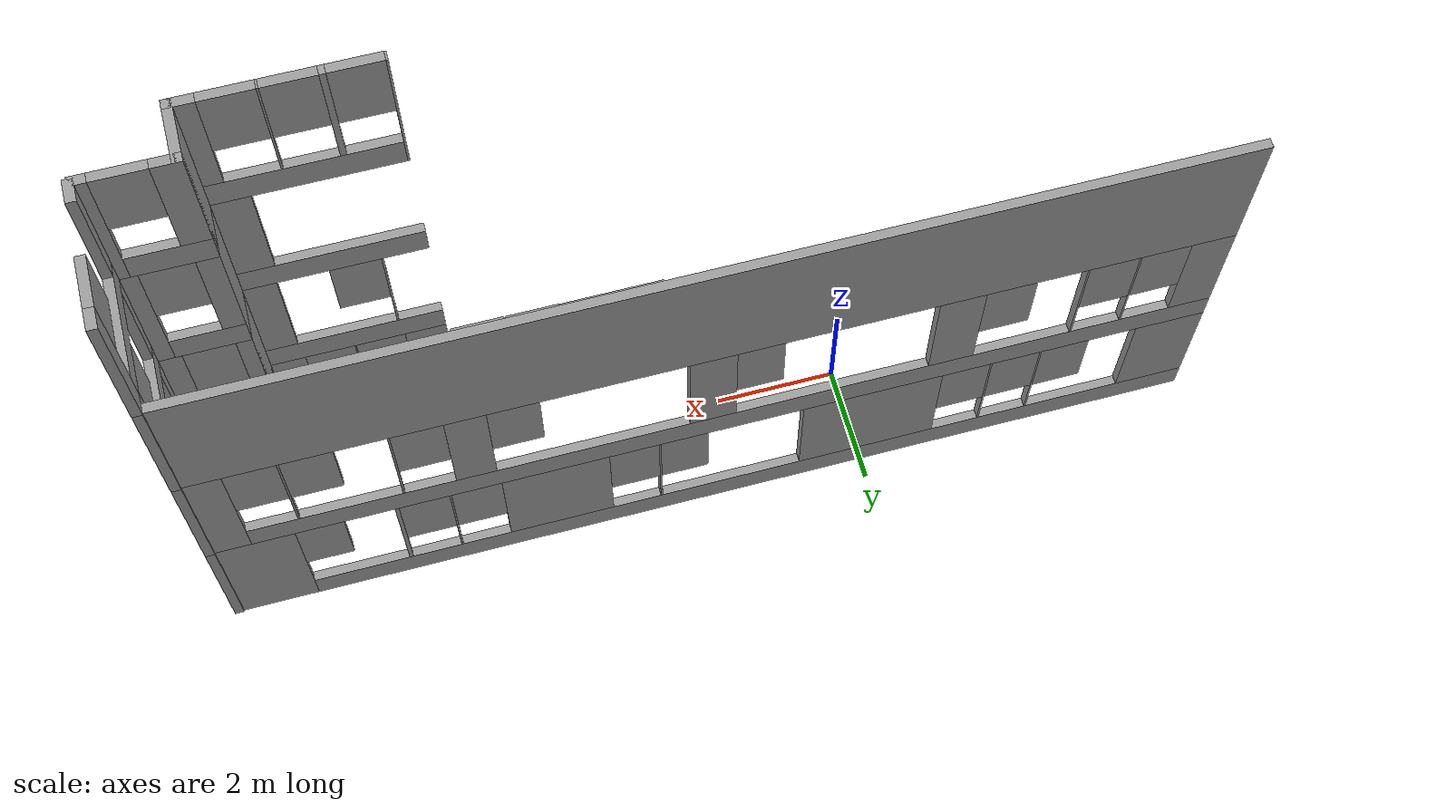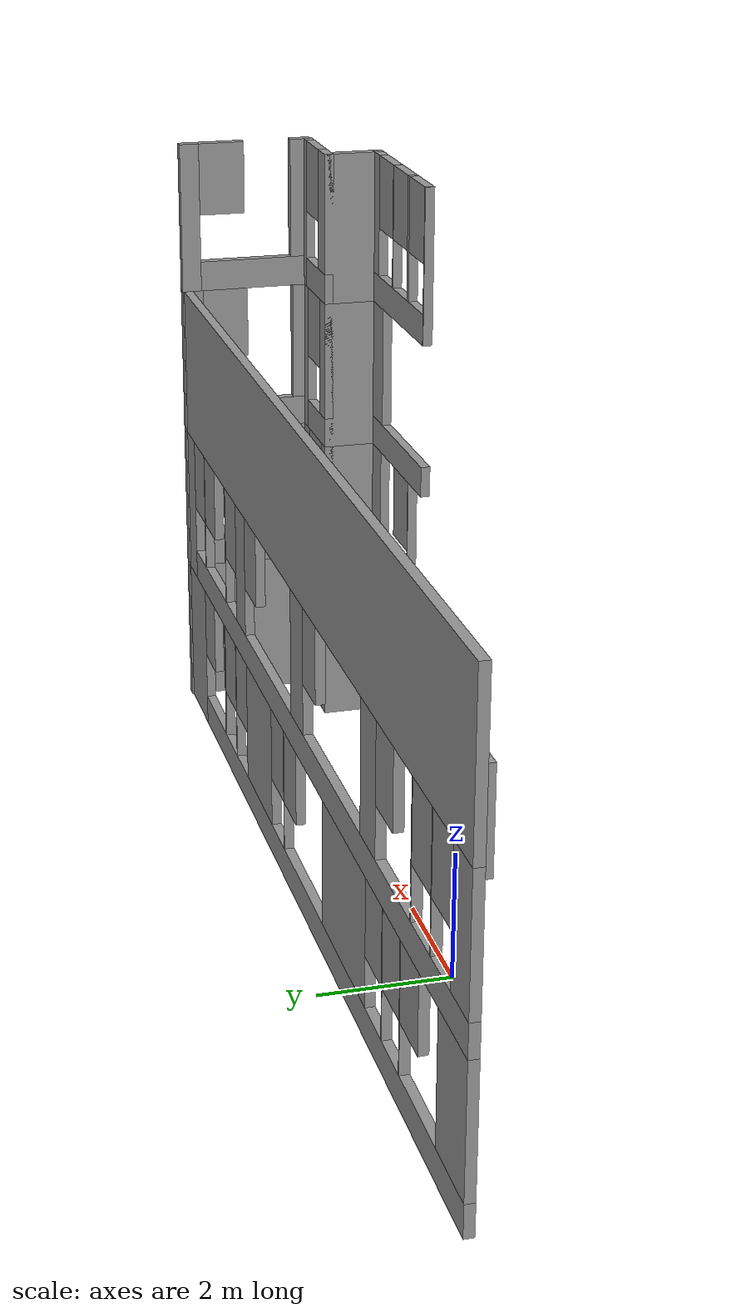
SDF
<sdf version="1.7">
 <model name="multimedia">
  <pose>2.48328 0.104264 0 0 -0 0</pose>
  <link name="Door_10">
   <collision name="Door_10_Collision">
    <geometry><box><size>0.9 0.17 2</size></box></geometry>
    <pose>0 0 1 0 -0 0</pose>
   </collision>
   <visual name="Door_10_Visual">
    <pose>0 0 1 0 -0 0</pose>
    <geometry><box><size>0.9 0.17 2</size></box></geometry>
    <material>
     <script><uri>file://media/materials/scripts/gazebo.material</uri><name>Gazebo/Grey</name></script>
    </material>
   </visual>
   <pose>3.23662 -1.49446 0 0 -0 0</pose>
  </link>
  <link name="Door_3">
   <collision name="Door_3_Collision">
    <geometry><box><size>0.9 0.17 2</size></box></geometry>
    <pose>0 0 1 0 -0 0</pose>
   </collision>
   <visual name="Door_3_Visual">
    <pose>0 0 1 0 -0 0</pose>
    <geometry><box><size>0.9 0.17 2</size></box></geometry>
    <material>
     <script><uri>file://media/materials/scripts/gazebo.material</uri><name>Gazebo/Grey</name></script>
    </material>
   </visual>
   <pose>0.536341 -1.48027 0 0 -0 0</pose>
  </link>
  <link name="Door_5">
   <collision name="Door_5_Collision">
    <geometry><box><size>0.9 0.17 2</size></box></geometry>
    <pose>0 0 1 0 -0 0</pose>
   </collision>
   <visual name="Door_5_Visual">
    <pose>0 0 1 0 -0 0</pose>
    <geometry><box><size>0.9 0.17 2</size></box></geometry>
    <material>
     <script><uri>file://media/materials/scripts/gazebo.material</uri><name>Gazebo/Grey</name></script>
    </material>
   </visual>
   <pose>1.44069 -1.48027 0 0 -0 0</pose>
  </link>
  <link name="Door_7">
   <collision name="Door_7_Collision">
    <geometry><box><size>0.9 0.17 2</size></box></geometry>
    <pose>0 0 1 0 -0 0</pose>
   </collision>
   <visual name="Door_7_Visual">
    <pose>0 0 1 0 -0 0</pose>
    <geometry><box><size>0.9 0.17 2</size></box></geometry>
    <material>
     <script><uri>file://media/materials/scripts/gazebo.material</uri><name>Gazebo/Grey</name></script>
    </material>
   </visual>
   <pose>2.3143 -1.4882 0 0 -0 0</pose>
  </link>
  <link name="Door_9">
   <collision name="Door_9_Collision">
    <geometry><box><size>0.9 0.17 2</size></box></geometry>
    <pose>0 0 1 0 -0 0</pose>
   </collision>
   <visual name="Door_9_Visual">
    <pose>0 0 1 0 -0 0</pose>
    <geometry><box><size>0.9 0.17 2</size></box></geometry>
    <material>
     <script><uri>file://media/materials/scripts/gazebo.material</uri><name>Gazebo/Grey</name></script>
    </material>
   </visual>
   <pose>7.58444 -0.673203 0 0 -0 0</pose>
  </link>
  <link name="Wall_102">
   <pose>5.2393 -1.4882 7.5 0 -0 0</pose>
   <visual name="Wall_102_Visual_0">
    <pose>-1.48398 0 1.25 0 -0 0</pose>
    <geometry><box><size>0.032041 0.15 2.5</size></box></geometry>
    <material>
     <script><uri>file://media/materials/scripts/gazebo.material</uri><name>Gazebo/Grey</name></script>
     <ambient>1 1 1 1</ambient>
    </material>
    <meta><layer>3</layer></meta>
   </visual>
   <collision name="Wall_102_Collision_0">
    <geometry><box><size>0.032041 0.15 2.5</size></box></geometry>
    <pose>-1.48398 0 1.25 0 -0 0</pose>
   </collision>
   <visual name="Wall_102_Visual_1">
    <pose>0.016021 0 0.25 0 -0 0</pose>
    <geometry><box><size>2.96796 0.15 0.5</size></box></geometry>
    <material>
     <script><uri>file://media/materials/scripts/gazebo.material</uri><name>Gazebo/Grey</name></script>
     <ambient>1 1 1 1</ambient>
    </material>
    <meta><layer>3</layer></meta>
   </visual>
   <collision name="Wall_102_Collision_1">
    <geometry><box><size>2.96796 0.15 0.5</size></box></geometry>
    <pose>0.016021 0 0.25 0 -0 0</pose>
   </collision>
   <visual name="Wall_102_Visual_2">
    <pose>-0.620737 0 1.5 0 -0 0</pose>
    <geometry><box><size>0.094444 0.15 2</size></box></geometry>
    <material>
     <script><uri>file://media/materials/scripts/gazebo.material</uri><name>Gazebo/Grey</name></script>
     <ambient>1 1 1 1</ambient>
    </material>
    <meta><layer>3</layer></meta>
   </visual>
   <collision name="Wall_102_Collision_2">
    <geometry><box><size>0.094444 0.15 2</size></box></geometry>
    <pose>-0.620737 0 1.5 0 -0 0</pose>
   </collision>
   <visual name="Wall_102_Visual_3">
    <pose>0.241763 0 1.5 0 -0 0</pose>
    <geometry><box><size>0.030555 0.15 2</size></box></geometry>
    <material>
     <script><uri>file://media/materials/scripts/gazebo.material</uri><name>Gazebo/Grey</name></script>
     <ambient>1 1 1 1</ambient>
    </material>
    <meta><layer>3</layer></meta>
   </visual>
   <collision name="Wall_102_Collision_3">
    <geometry><box><size>0.030555 0.15 2</size></box></geometry>
    <pose>0.241763 0 1.5 0 -0 0</pose>
   </collision>
   <visual name="Wall_102_Visual_4">
    <pose>1.27852 0 1.5 0 -0 0</pose>
    <geometry><box><size>0.442959 0.15 2</size></box></geometry>
    <material>
     <script><uri>file://media/materials/scripts/gazebo.material</uri><name>Gazebo/Grey</name></script>
     <ambient>1 1 1 1</ambient>
    </material>
    <meta><layer>3</layer></meta>
   </visual>
   <collision name="Wall_102_Collision_4">
    <geometry><box><size>0.442959 0.15 2</size></box></geometry>
    <pose>1.27852 0 1.5 0 -0 0</pose>
   </collision>
   <visual name="Wall_102_Visual_5">
    <pose>-1.06796 0 1.9 0 -0 0</pose>
    <geometry><box><size>0.8 0.15 1.2</size></box></geometry>
    <material>
     <script><uri>file://media/materials/scripts/gazebo.material</uri><name>Gazebo/Grey</name></script>
     <ambient>1 1 1 1</ambient>
    </material>
    <meta><layer>3</layer></meta>
   </visual>
   <collision name="Wall_102_Collision_5">
    <geometry><box><size>0.8 0.15 1.2</size></box></geometry>
    <pose>-1.06796 0 1.9 0 -0 0</pose>
   </collision>
   <visual name="Wall_102_Visual_6">
    <pose>-0.173514 0 1.9 0 -0 0</pose>
    <geometry><box><size>0.8 0.15 1.2</size></box></geometry>
    <material>
     <script><uri>file://media/materials/scripts/gazebo.material</uri><name>Gazebo/Grey</name></script>
     <ambient>1 1 1 1</ambient>
    </material>
    <meta><layer>3</layer></meta>
   </visual>
   <collision name="Wall_102_Collision_6">
    <geometry><box><size>0.8 0.15 1.2</size></box></geometry>
    <pose>-0.173514 0 1.9 0 -0 0</pose>
   </collision>
   <visual name="Wall_102_Visual_7">
    <pose>0.657041 0 1.9 0 -0 0</pose>
    <geometry><box><size>0.8 0.15 1.2</size></box></geometry>
    <material>
     <script><uri>file://media/materials/scripts/gazebo.material</uri><name>Gazebo/Grey</name></script>
     <ambient>1 1 1 1</ambient>
    </material>
    <meta><layer>3</layer></meta>
   </visual>
   <collision name="Wall_102_Collision_7">
    <geometry><box><size>0.8 0.15 1.2</size></box></geometry>
    <pose>0.657041 0 1.9 0 -0 0</pose>
   </collision>
  </link>
  <link name="Wall_105">
   <pose>8.06295 0.4382 7.5 0 -0 -1.5708</pose>
   <visual name="Wall_105_Visual_0">
    <pose>-0.963732 0 1.25 0 -0 0</pose>
    <geometry><box><size>0.322536 0.15 2.5</size></box></geometry>
    <material>
     <script><uri>file://media/materials/scripts/gazebo.material</uri><name>Gazebo/Grey</name></script>
     <ambient>1 1 1 1</ambient>
    </material>
    <meta><layer>3</layer></meta>
   </visual>
   <collision name="Wall_105_Collision_0">
    <geometry><box><size>0.322536 0.15 2.5</size></box></geometry>
    <pose>-0.963732 0 1.25 0 -0 0</pose>
   </collision>
   <visual name="Wall_105_Visual_1">
    <pose>0.161268 0 0.25 0 -0 0</pose>
    <geometry><box><size>1.92746 0.15 0.5</size></box></geometry>
    <material>
     <script><uri>file://media/materials/scripts/gazebo.material</uri><name>Gazebo/Grey</name></script>
     <ambient>1 1 1 1</ambient>
    </material>
    <meta><layer>3</layer></meta>
   </visual>
   <collision name="Wall_105_Collision_1">
    <geometry><box><size>1.92746 0.15 0.5</size></box></geometry>
    <pose>0.161268 0 0.25 0 -0 0</pose>
   </collision>
   <visual name="Wall_105_Visual_2">
    <pose>0.944601 0 1.5 0 -0 0</pose>
    <geometry><box><size>0.360798 0.15 2</size></box></geometry>
    <material>
     <script><uri>file://media/materials/scripts/gazebo.material</uri><name>Gazebo/Grey</name></script>
     <ambient>1 1 1 1</ambient>
    </material>
    <meta><layer>3</layer></meta>
   </visual>
   <collision name="Wall_105_Collision_2">
    <geometry><box><size>0.360798 0.15 2</size></box></geometry>
    <pose>0.944601 0 1.5 0 -0 0</pose>
   </collision>
   <visual name="Wall_105_Visual_3">
    <pose>-0.419131 0 1.9 0 -0 0</pose>
    <geometry><box><size>0.766667 0.15 1.2</size></box></geometry>
    <material>
     <script><uri>file://media/materials/scripts/gazebo.material</uri><name>Gazebo/Grey</name></script>
     <ambient>1 1 1 1</ambient>
    </material>
    <meta><layer>3</layer></meta>
   </visual>
   <collision name="Wall_105_Collision_3">
    <geometry><box><size>0.766667 0.15 1.2</size></box></geometry>
    <pose>-0.419131 0 1.9 0 -0 0</pose>
   </collision>
  </link>
  <link name="Wall_106">
   <collision name="Wall_106_Collision">
    <geometry><box><size>1 0.15 2.5</size></box></geometry>
    <pose>0 0 1.25 0 -0 0</pose>
   </collision>
   <visual name="Wall_106_Visual">
    <pose>0 0 1.25 0 -0 0</pose>
    <geometry><box><size>1 0.15 2.5</size></box></geometry>
    <material>
     <script><uri>file://media/materials/scripts/gazebo.material</uri><name>Gazebo/Grey</name></script>
     <ambient>1 1 1 1</ambient>
    </material>
    <meta><layer>3</layer></meta>
   </visual>
   <pose>6.6643 -1.0632 7.5 0 -0 1.5708</pose>
  </link>
  <link name="Wall_107">
   <pose>7.3393 -0.6382 7.5 0 -0 3.14159</pose>
   <visual name="Wall_107_Visual_0">
    <pose>-0.620187 0 1.25 0 -0 0</pose>
    <geometry><box><size>0.259625 0.15 2.5</size></box></geometry>
    <material>
     <script><uri>file://media/materials/scripts/gazebo.material</uri><name>Gazebo/Grey</name></script>
     <ambient>1 1 1 1</ambient>
    </material>
    <meta><layer>3</layer></meta>
   </visual>
   <collision name="Wall_107_Collision_0">
    <geometry><box><size>0.259625 0.15 2.5</size></box></geometry>
    <pose>-0.620187 0 1.25 0 -0 0</pose>
   </collision>
   <visual name="Wall_107_Visual_1">
    <pose>0.129813 0 0.25 0 -0 0</pose>
    <geometry><box><size>1.24038 0.15 0.5</size></box></geometry>
    <material>
     <script><uri>file://media/materials/scripts/gazebo.material</uri><name>Gazebo/Grey</name></script>
     <ambient>1 1 1 1</ambient>
    </material>
    <meta><layer>3</layer></meta>
   </visual>
   <collision name="Wall_107_Collision_1">
    <geometry><box><size>1.24038 0.15 0.5</size></box></geometry>
    <pose>0.129813 0 0.25 0 -0 0</pose>
   </collision>
   <visual name="Wall_107_Visual_2">
    <pose>0.529813 0 1.5 0 -0 0</pose>
    <geometry><box><size>0.440375 0.15 2</size></box></geometry>
    <material>
     <script><uri>file://media/materials/scripts/gazebo.material</uri><name>Gazebo/Grey</name></script>
     <ambient>1 1 1 1</ambient>
    </material>
    <meta><layer>3</layer></meta>
   </visual>
   <collision name="Wall_107_Collision_2">
    <geometry><box><size>0.440375 0.15 2</size></box></geometry>
    <pose>0.529813 0 1.5 0 -0 0</pose>
   </collision>
   <visual name="Wall_107_Visual_3">
    <pose>-0.090375 0 1.9 0 -0 0</pose>
    <geometry><box><size>0.8 0.15 1.2</size></box></geometry>
    <material>
     <script><uri>file://media/materials/scripts/gazebo.material</uri><name>Gazebo/Grey</name></script>
     <ambient>1 1 1 1</ambient>
    </material>
    <meta><layer>3</layer></meta>
   </visual>
   <collision name="Wall_107_Collision_3">
    <geometry><box><size>0.8 0.15 1.2</size></box></geometry>
    <pose>-0.090375 0 1.9 0 -0 0</pose>
   </collision>
  </link>
  <link name="Wall_13">
   <pose>5.2393 -1.4882 0 0 -0 0</pose>
   <visual name="Wall_13_Visual_0">
    <pose>-1.16632 0 1.25 0 -0 0</pose>
    <geometry><box><size>0.667366 0.15 2.5</size></box></geometry>
    <material>
     <script><uri>file://media/materials/scripts/gazebo.material</uri><name>Gazebo/Grey</name></script>
     <ambient>1 1 1 1</ambient>
    </material>
    <meta><layer>0</layer></meta>
   </visual>
   <collision name="Wall_13_Collision_0">
    <geometry><box><size>0.667366 0.15 2.5</size></box></geometry>
    <pose>-1.16632 0 1.25 0 -0 0</pose>
   </collision>
   <visual name="Wall_13_Visual_1">
    <pose>0.333683 0 0.25 0 -0 0</pose>
    <geometry><box><size>2.33263 0.15 0.5</size></box></geometry>
    <material>
     <script><uri>file://media/materials/scripts/gazebo.material</uri><name>Gazebo/Grey</name></script>
     <ambient>1 1 1 1</ambient>
    </material>
    <meta><layer>0</layer></meta>
   </visual>
   <collision name="Wall_13_Collision_1">
    <geometry><box><size>2.33263 0.15 0.5</size></box></geometry>
    <pose>0.333683 0 0.25 0 -0 0</pose>
   </collision>
   <visual name="Wall_13_Visual_2">
    <pose>-0.022006 0 1.5 0 -0 0</pose>
    <geometry><box><size>0.021256 0.15 2</size></box></geometry>
    <material>
     <script><uri>file://media/materials/scripts/gazebo.material</uri><name>Gazebo/Grey</name></script>
     <ambient>1 1 1 1</ambient>
    </material>
    <meta><layer>0</layer></meta>
   </visual>
   <collision name="Wall_13_Collision_2">
    <geometry><box><size>0.021256 0.15 2</size></box></geometry>
    <pose>-0.022006 0 1.5 0 -0 0</pose>
   </collision>
   <visual name="Wall_13_Visual_3">
    <pose>1.14431 0 1.5 0 -0 0</pose>
    <geometry><box><size>0.711378 0.15 2</size></box></geometry>
    <material>
     <script><uri>file://media/materials/scripts/gazebo.material</uri><name>Gazebo/Grey</name></script>
     <ambient>1 1 1 1</ambient>
    </material>
    <meta><layer>0</layer></meta>
   </visual>
   <collision name="Wall_13_Collision_3">
    <geometry><box><size>0.711378 0.15 2</size></box></geometry>
    <pose>1.14431 0 1.5 0 -0 0</pose>
   </collision>
   <visual name="Wall_13_Visual_4">
    <pose>-0.432634 0 1.9 0 -0 0</pose>
    <geometry><box><size>0.8 0.15 1.2</size></box></geometry>
    <material>
     <script><uri>file://media/materials/scripts/gazebo.material</uri><name>Gazebo/Grey</name></script>
     <ambient>1 1 1 1</ambient>
    </material>
    <meta><layer>0</layer></meta>
   </visual>
   <collision name="Wall_13_Collision_4">
    <geometry><box><size>0.8 0.15 1.2</size></box></geometry>
    <pose>-0.432634 0 1.9 0 -0 0</pose>
   </collision>
   <visual name="Wall_13_Visual_5">
    <pose>0.388622 0 1.9 0 -0 0</pose>
    <geometry><box><size>0.8 0.15 1.2</size></box></geometry>
    <material>
     <script><uri>file://media/materials/scripts/gazebo.material</uri><name>Gazebo/Grey</name></script>
     <ambient>1 1 1 1</ambient>
    </material>
    <meta><layer>0</layer></meta>
   </visual>
   <collision name="Wall_13_Collision_5">
    <geometry><box><size>0.8 0.15 1.2</size></box></geometry>
    <pose>0.388622 0 1.9 0 -0 0</pose>
   </collision>
  </link>
  <link name="Wall_2">
   <pose>0.012948 1.46405 0 0 -0 3.14159</pose>
   <visual name="Wall_2_Visual_0">
    <pose>-7.42781 0 1.25 0 -0 0</pose>
    <geometry><box><size>1.39439 0.15 2.5</size></box></geometry>
    <material>
     <script><uri>file://media/materials/scripts/gazebo.material</uri><name>Gazebo/Grey</name></script>
     <ambient>1 1 1 1</ambient>
    </material>
    <meta><layer>0</layer></meta>
   </visual>
   <collision name="Wall_2_Collision_0">
    <geometry><box><size>1.39439 0.15 2.5</size></box></geometry>
    <pose>-7.42781 0 1.25 0 -0 0</pose>
   </collision>
   <visual name="Wall_2_Visual_1">
    <pose>0.697193 0 0.25 0 -0 0</pose>
    <geometry><box><size>14.8556 0.15 0.5</size></box></geometry>
    <material>
     <script><uri>file://media/materials/scripts/gazebo.material</uri><name>Gazebo/Grey</name></script>
     <ambient>1 1 1 1</ambient>
    </material>
    <meta><layer>0</layer></meta>
   </visual>
   <collision name="Wall_2_Collision_1">
    <geometry><box><size>14.8556 0.15 0.5</size></box></geometry>
    <pose>0.697193 0 0.25 0 -0 0</pose>
   </collision>
   <visual name="Wall_2_Visual_2">
    <pose>-5.1327 0 1.5 0 -0 0</pose>
    <geometry><box><size>0.0625 0.15 2</size></box></geometry>
    <material>
     <script><uri>file://media/materials/scripts/gazebo.material</uri><name>Gazebo/Grey</name></script>
     <ambient>1 1 1 1</ambient>
    </material>
    <meta><layer>0</layer></meta>
   </visual>
   <collision name="Wall_2_Collision_2">
    <geometry><box><size>0.0625 0.15 2</size></box></geometry>
    <pose>-5.1327 0 1.5 0 -0 0</pose>
   </collision>
   <visual name="Wall_2_Visual_3">
    <pose>-4.28617 0 1.5 0 -0 0</pose>
    <geometry><box><size>0.030556 0.15 2</size></box></geometry>
    <material>
     <script><uri>file://media/materials/scripts/gazebo.material</uri><name>Gazebo/Grey</name></script>
     <ambient>1 1 1 1</ambient>
    </material>
    <meta><layer>0</layer></meta>
   </visual>
   <collision name="Wall_2_Collision_3">
    <geometry><box><size>0.030556 0.15 2</size></box></geometry>
    <pose>-4.28617 0 1.5 0 -0 0</pose>
   </collision>
   <visual name="Wall_2_Visual_4">
    <pose>-2.60909 0 1.5 0 -0 0</pose>
    <geometry><box><size>1.72361 0.15 2</size></box></geometry>
    <material>
     <script><uri>file://media/materials/scripts/gazebo.material</uri><name>Gazebo/Grey</name></script>
     <ambient>1 1 1 1</ambient>
    </material>
    <meta><layer>0</layer></meta>
   </visual>
   <collision name="Wall_2_Collision_4">
    <geometry><box><size>1.72361 0.15 2</size></box></geometry>
    <pose>-2.60909 0 1.5 0 -0 0</pose>
   </collision>
   <visual name="Wall_2_Visual_5">
    <pose>-0.932003 0 1.5 0 -0 0</pose>
    <geometry><box><size>0.030555 0.15 2</size></box></geometry>
    <material>
     <script><uri>file://media/materials/scripts/gazebo.material</uri><name>Gazebo/Grey</name></script>
     <ambient>1 1 1 1</ambient>
    </material>
    <meta><layer>0</layer></meta>
   </visual>
   <collision name="Wall_2_Collision_5">
    <geometry><box><size>0.030555 0.15 2</size></box></geometry>
    <pose>-0.932003 0 1.5 0 -0 0</pose>
   </collision>
   <visual name="Wall_2_Visual_6">
    <pose>2.56591 0 1.5 0 -0 0</pose>
    <geometry><box><size>2.29861 0.15 2</size></box></geometry>
    <material>
     <script><uri>file://media/materials/scripts/gazebo.material</uri><name>Gazebo/Grey</name></script>
     <ambient>1 1 1 1</ambient>
    </material>
    <meta><layer>0</layer></meta>
   </visual>
   <collision name="Wall_2_Collision_6">
    <geometry><box><size>2.29861 0.15 2</size></box></geometry>
    <pose>2.56591 0 1.5 0 -0 0</pose>
   </collision>
   <visual name="Wall_2_Visual_7">
    <pose>4.5305 0 1.5 0 -0 0</pose>
    <geometry><box><size>0.030556 0.15 2</size></box></geometry>
    <material>
     <script><uri>file://media/materials/scripts/gazebo.material</uri><name>Gazebo/Grey</name></script>
     <ambient>1 1 1 1</ambient>
    </material>
    <meta><layer>0</layer></meta>
   </visual>
   <collision name="Wall_2_Collision_7">
    <geometry><box><size>0.030556 0.15 2</size></box></geometry>
    <pose>4.5305 0 1.5 0 -0 0</pose>
   </collision>
   <visual name="Wall_2_Visual_8">
    <pose>5.36105 0 1.5 0 -0 0</pose>
    <geometry><box><size>0.030555 0.15 2</size></box></geometry>
    <material>
     <script><uri>file://media/materials/scripts/gazebo.material</uri><name>Gazebo/Grey</name></script>
     <ambient>1 1 1 1</ambient>
    </material>
    <meta><layer>0</layer></meta>
   </visual>
   <collision name="Wall_2_Collision_8">
    <geometry><box><size>0.030555 0.15 2</size></box></geometry>
    <pose>5.36105 0 1.5 0 -0 0</pose>
   </collision>
   <visual name="Wall_2_Visual_9">
    <pose>7.54997 0 1.5 0 -0 0</pose>
    <geometry><box><size>1.15006 0.15 2</size></box></geometry>
    <material>
     <script><uri>file://media/materials/scripts/gazebo.material</uri><name>Gazebo/Grey</name></script>
     <ambient>1 1 1 1</ambient>
    </material>
    <meta><layer>0</layer></meta>
   </visual>
   <collision name="Wall_2_Collision_9">
    <geometry><box><size>1.15006 0.15 2</size></box></geometry>
    <pose>7.54997 0 1.5 0 -0 0</pose>
   </collision>
   <visual name="Wall_2_Visual_10">
    <pose>-6.34728 0 1.9 0 -0 0</pose>
    <geometry><box><size>0.766666 0.15 1.2</size></box></geometry>
    <material>
     <script><uri>file://media/materials/scripts/gazebo.material</uri><name>Gazebo/Grey</name></script>
     <ambient>1 1 1 1</ambient>
    </material>
    <meta><layer>0</layer></meta>
   </visual>
   <collision name="Wall_2_Collision_10">
    <geometry><box><size>0.766666 0.15 1.2</size></box></geometry>
    <pose>-6.34728 0 1.9 0 -0 0</pose>
   </collision>
   <visual name="Wall_2_Visual_11">
    <pose>-4.70145 0 1.9 0 -0 0</pose>
    <geometry><box><size>0.8 0.15 1.2</size></box></geometry>
    <material>
     <script><uri>file://media/materials/scripts/gazebo.material</uri><name>Gazebo/Grey</name></script>
     <ambient>1 1 1 1</ambient>
    </material>
    <meta><layer>0</layer></meta>
   </visual>
   <collision name="Wall_2_Collision_11">
    <geometry><box><size>0.8 0.15 1.2</size></box></geometry>
    <pose>-4.70145 0 1.9 0 -0 0</pose>
   </collision>
   <visual name="Wall_2_Visual_12">
    <pose>-3.87089 0 1.9 0 -0 0</pose>
    <geometry><box><size>0.8 0.15 1.2</size></box></geometry>
    <material>
     <script><uri>file://media/materials/scripts/gazebo.material</uri><name>Gazebo/Grey</name></script>
     <ambient>1 1 1 1</ambient>
    </material>
    <meta><layer>0</layer></meta>
   </visual>
   <collision name="Wall_2_Collision_12">
    <geometry><box><size>0.8 0.15 1.2</size></box></geometry>
    <pose>-3.87089 0 1.9 0 -0 0</pose>
   </collision>
   <visual name="Wall_2_Visual_13">
    <pose>-1.34728 0 1.9 0 -0 0</pose>
    <geometry><box><size>0.8 0.15 1.2</size></box></geometry>
    <material>
     <script><uri>file://media/materials/scripts/gazebo.material</uri><name>Gazebo/Grey</name></script>
     <ambient>1 1 1 1</ambient>
    </material>
    <meta><layer>0</layer></meta>
   </visual>
   <collision name="Wall_2_Collision_13">
    <geometry><box><size>0.8 0.15 1.2</size></box></geometry>
    <pose>-1.34728 0 1.9 0 -0 0</pose>
   </collision>
   <visual name="Wall_2_Visual_14">
    <pose>-0.533392 0 1.9 0 -0 0</pose>
    <geometry><box><size>0.766667 0.15 1.2</size></box></geometry>
    <material>
     <script><uri>file://media/materials/scripts/gazebo.material</uri><name>Gazebo/Grey</name></script>
     <ambient>1 1 1 1</ambient>
    </material>
    <meta><layer>0</layer></meta>
   </visual>
   <collision name="Wall_2_Collision_14">
    <geometry><box><size>0.766667 0.15 1.2</size></box></geometry>
    <pose>-0.533392 0 1.9 0 -0 0</pose>
   </collision>
   <visual name="Wall_2_Visual_15">
    <pose>4.11522 0 1.9 0 -0 0</pose>
    <geometry><box><size>0.8 0.15 1.2</size></box></geometry>
    <material>
     <script><uri>file://media/materials/scripts/gazebo.material</uri><name>Gazebo/Grey</name></script>
     <ambient>1 1 1 1</ambient>
    </material>
    <meta><layer>0</layer></meta>
   </visual>
   <collision name="Wall_2_Collision_15">
    <geometry><box><size>0.8 0.15 1.2</size></box></geometry>
    <pose>4.11522 0 1.9 0 -0 0</pose>
   </collision>
   <visual name="Wall_2_Visual_16">
    <pose>4.94578 0 1.9 0 -0 0</pose>
    <geometry><box><size>0.8 0.15 1.2</size></box></geometry>
    <material>
     <script><uri>file://media/materials/scripts/gazebo.material</uri><name>Gazebo/Grey</name></script>
     <ambient>1 1 1 1</ambient>
    </material>
    <meta><layer>0</layer></meta>
   </visual>
   <collision name="Wall_2_Collision_16">
    <geometry><box><size>0.8 0.15 1.2</size></box></geometry>
    <pose>4.94578 0 1.9 0 -0 0</pose>
   </collision>
   <visual name="Wall_2_Visual_17">
    <pose>5.77564 0 1.9 0 -0 0</pose>
    <geometry><box><size>0.798611 0.15 1.2</size></box></geometry>
    <material>
     <script><uri>file://media/materials/scripts/gazebo.material</uri><name>Gazebo/Grey</name></script>
     <ambient>1 1 1 1</ambient>
    </material>
    <meta><layer>0</layer></meta>
   </visual>
   <collision name="Wall_2_Collision_17">
    <geometry><box><size>0.798611 0.15 1.2</size></box></geometry>
    <pose>5.77564 0 1.9 0 -0 0</pose>
   </collision>
  </link>
  <link name="Wall_65">
   <collision name="Wall_65_Collision">
    <geometry><box><size>2.25 0.15 2.5</size></box></geometry>
    <pose>0 0 1.25 0 -0 0</pose>
   </collision>
   <visual name="Wall_65_Visual">
    <pose>0 0 1.25 0 -0 0</pose>
    <geometry><box><size>2.25 0.15 2.5</size></box></geometry>
    <material>
     <script><uri>file://media/materials/scripts/gazebo.material</uri><name>Gazebo/Grey</name></script>
     <ambient>1 1 1 1</ambient>
    </material>
    <meta><layer>0</layer></meta>
   </visual>
   <pose>8.06295 0.4382 0 0 -0 -1.5708</pose>
  </link>
  <link name="Wall_67">
   <collision name="Wall_67_Collision">
    <geometry><box><size>1 0.15 2.5</size></box></geometry>
    <pose>0 0 1.25 0 -0 0</pose>
   </collision>
   <visual name="Wall_67_Visual">
    <pose>0 0 1.25 0 -0 0</pose>
    <geometry><box><size>1 0.15 2.5</size></box></geometry>
    <material>
     <script><uri>file://media/materials/scripts/gazebo.material</uri><name>Gazebo/Grey</name></script>
     <ambient>1 1 1 1</ambient>
    </material>
    <meta><layer>0</layer></meta>
   </visual>
   <pose>6.6643 -1.0632 0 0 -0 1.5708</pose>
  </link>
  <link name="Wall_69">
   <collision name="Wall_69_Collision">
    <geometry><box><size>0.5 0.15 2.5</size></box></geometry>
    <pose>0 0 1.25 0 -0 0</pose>
   </collision>
   <visual name="Wall_69_Visual">
    <pose>0 0 1.25 0 -0 0</pose>
    <geometry><box><size>0.5 0.15 2.5</size></box></geometry>
    <material>
     <script><uri>file://media/materials/scripts/gazebo.material</uri><name>Gazebo/Grey</name></script>
     <ambient>1 1 1 1</ambient>
    </material>
    <meta><layer>0</layer></meta>
   </visual>
   <pose>6.8393 -0.6382 0 0 -0 3.14159</pose>
  </link>
  <link name="Wall_82">
   <pose>0.012948 1.46405 2.5 0 -0 3.14159</pose>
   <visual name="Wall_82_Visual_0">
    <pose>-7.76322 0 1.25 0 -0 0</pose>
    <geometry><box><size>0.723552 0.15 2.5</size></box></geometry>
    <material>
     <script><uri>file://media/materials/scripts/gazebo.material</uri><name>Gazebo/Grey</name></script>
     <ambient>1 1 1 1</ambient>
    </material>
    <meta><layer>1</layer></meta>
   </visual>
   <collision name="Wall_82_Collision_0">
    <geometry><box><size>0.723552 0.15 2.5</size></box></geometry>
    <pose>-7.76322 0 1.25 0 -0 0</pose>
   </collision>
   <visual name="Wall_82_Visual_1">
    <pose>0.361776 0 0.25 0 -0 0</pose>
    <geometry><box><size>15.5264 0.15 0.5</size></box></geometry>
    <material>
     <script><uri>file://media/materials/scripts/gazebo.material</uri><name>Gazebo/Grey</name></script>
     <ambient>1 1 1 1</ambient>
    </material>
    <meta><layer>1</layer></meta>
   </visual>
   <collision name="Wall_82_Collision_1">
    <geometry><box><size>15.5264 0.15 0.5</size></box></geometry>
    <pose>0.361776 0 0.25 0 -0 0</pose>
   </collision>
   <visual name="Wall_82_Visual_2">
    <pose>-6.58617 0 1.5 0 -0 0</pose>
    <geometry><box><size>0.030556 0.15 2</size></box></geometry>
    <material>
     <script><uri>file://media/materials/scripts/gazebo.material</uri><name>Gazebo/Grey</name></script>
     <ambient>1 1 1 1</ambient>
    </material>
    <meta><layer>1</layer></meta>
   </visual>
   <collision name="Wall_82_Collision_2">
    <geometry><box><size>0.030556 0.15 2</size></box></geometry>
    <pose>-6.58617 0 1.5 0 -0 0</pose>
   </collision>
   <visual name="Wall_82_Visual_3">
    <pose>-4.957 0 1.5 0 -0 0</pose>
    <geometry><box><size>0.030555 0.15 2</size></box></geometry>
    <material>
     <script><uri>file://media/materials/scripts/gazebo.material</uri><name>Gazebo/Grey</name></script>
     <ambient>1 1 1 1</ambient>
    </material>
    <meta><layer>1</layer></meta>
   </visual>
   <collision name="Wall_82_Collision_3">
    <geometry><box><size>0.030555 0.15 2</size></box></geometry>
    <pose>-4.957 0 1.5 0 -0 0</pose>
   </collision>
   <visual name="Wall_82_Visual_4">
    <pose>-3.82298 0 1.5 0 -0 0</pose>
    <geometry><box><size>0.6375 0.15 2</size></box></geometry>
    <material>
     <script><uri>file://media/materials/scripts/gazebo.material</uri><name>Gazebo/Grey</name></script>
     <ambient>1 1 1 1</ambient>
    </material>
    <meta><layer>1</layer></meta>
   </visual>
   <collision name="Wall_82_Collision_4">
    <geometry><box><size>0.6375 0.15 2</size></box></geometry>
    <pose>-3.82298 0 1.5 0 -0 0</pose>
   </collision>
   <visual name="Wall_82_Visual_5">
    <pose>-0.069503 0 1.5 0 -0 0</pose>
    <geometry><box><size>0.733333 0.15 2</size></box></geometry>
    <material>
     <script><uri>file://media/materials/scripts/gazebo.material</uri><name>Gazebo/Grey</name></script>
     <ambient>1 1 1 1</ambient>
    </material>
    <meta><layer>1</layer></meta>
   </visual>
   <collision name="Wall_82_Collision_5">
    <geometry><box><size>0.733333 0.15 2</size></box></geometry>
    <pose>-0.069503 0 1.5 0 -0 0</pose>
   </collision>
   <visual name="Wall_82_Visual_6">
    <pose>3.79577 0 1.5 0 -0 0</pose>
    <geometry><box><size>0.733333 0.15 2</size></box></geometry>
    <material>
     <script><uri>file://media/materials/scripts/gazebo.material</uri><name>Gazebo/Grey</name></script>
     <ambient>1 1 1 1</ambient>
    </material>
    <meta><layer>1</layer></meta>
   </visual>
   <collision name="Wall_82_Collision_6">
    <geometry><box><size>0.733333 0.15 2</size></box></geometry>
    <pose>3.79577 0 1.5 0 -0 0</pose>
   </collision>
   <visual name="Wall_82_Visual_7">
    <pose>5.77633 0 1.5 0 -0 0</pose>
    <geometry><box><size>0.030555 0.15 2</size></box></geometry>
    <material>
     <script><uri>file://media/materials/scripts/gazebo.material</uri><name>Gazebo/Grey</name></script>
     <ambient>1 1 1 1</ambient>
    </material>
    <meta><layer>1</layer></meta>
   </visual>
   <collision name="Wall_82_Collision_7">
    <geometry><box><size>0.030555 0.15 2</size></box></geometry>
    <pose>5.77633 0 1.5 0 -0 0</pose>
   </collision>
   <visual name="Wall_82_Visual_8">
    <pose>6.60689 0 1.5 0 -0 0</pose>
    <geometry><box><size>0.030556 0.15 2</size></box></geometry>
    <material>
     <script><uri>file://media/materials/scripts/gazebo.material</uri><name>Gazebo/Grey</name></script>
     <ambient>1 1 1 1</ambient>
    </material>
    <meta><layer>1</layer></meta>
   </visual>
   <collision name="Wall_82_Collision_8">
    <geometry><box><size>0.030556 0.15 2</size></box></geometry>
    <pose>6.60689 0 1.5 0 -0 0</pose>
   </collision>
   <visual name="Wall_82_Visual_9">
    <pose>7.77358 0 1.5 0 -0 0</pose>
    <geometry><box><size>0.702836 0.15 2</size></box></geometry>
    <material>
     <script><uri>file://media/materials/scripts/gazebo.material</uri><name>Gazebo/Grey</name></script>
     <ambient>1 1 1 1</ambient>
    </material>
    <meta><layer>1</layer></meta>
   </visual>
   <collision name="Wall_82_Collision_9">
    <geometry><box><size>0.702836 0.15 2</size></box></geometry>
    <pose>7.77358 0 1.5 0 -0 0</pose>
   </collision>
   <visual name="Wall_82_Visual_10">
    <pose>-7.00145 0 1.9 0 -0 0</pose>
    <geometry><box><size>0.8 0.15 1.2</size></box></geometry>
    <material>
     <script><uri>file://media/materials/scripts/gazebo.material</uri><name>Gazebo/Grey</name></script>
     <ambient>1 1 1 1</ambient>
    </material>
    <meta><layer>1</layer></meta>
   </visual>
   <collision name="Wall_82_Collision_10">
    <geometry><box><size>0.8 0.15 1.2</size></box></geometry>
    <pose>-7.00145 0 1.9 0 -0 0</pose>
   </collision>
   <visual name="Wall_82_Visual_11">
    <pose>-6.17159 0 1.9 0 -0 0</pose>
    <geometry><box><size>0.798611 0.15 1.2</size></box></geometry>
    <material>
     <script><uri>file://media/materials/scripts/gazebo.material</uri><name>Gazebo/Grey</name></script>
     <ambient>1 1 1 1</ambient>
    </material>
    <meta><layer>1</layer></meta>
   </visual>
   <collision name="Wall_82_Collision_11">
    <geometry><box><size>0.798611 0.15 1.2</size></box></geometry>
    <pose>-6.17159 0 1.9 0 -0 0</pose>
   </collision>
   <visual name="Wall_82_Visual_12">
    <pose>-4.54172 0 1.9 0 -0 0</pose>
    <geometry><box><size>0.8 0.15 1.2</size></box></geometry>
    <material>
     <script><uri>file://media/materials/scripts/gazebo.material</uri><name>Gazebo/Grey</name></script>
     <ambient>1 1 1 1</ambient>
    </material>
    <meta><layer>1</layer></meta>
   </visual>
   <collision name="Wall_82_Collision_12">
    <geometry><box><size>0.8 0.15 1.2</size></box></geometry>
    <pose>-4.54172 0 1.9 0 -0 0</pose>
   </collision>
   <visual name="Wall_82_Visual_13">
    <pose>-3.10492 0 1.9 0 -0 0</pose>
    <geometry><box><size>0.798611 0.15 1.2</size></box></geometry>
    <material>
     <script><uri>file://media/materials/scripts/gazebo.material</uri><name>Gazebo/Grey</name></script>
     <ambient>1 1 1 1</ambient>
    </material>
    <meta><layer>1</layer></meta>
   </visual>
   <collision name="Wall_82_Collision_13">
    <geometry><box><size>0.798611 0.15 1.2</size></box></geometry>
    <pose>-3.10492 0 1.9 0 -0 0</pose>
   </collision>
   <visual name="Wall_82_Visual_14">
    <pose>0.664525 0 1.9 0 -0 0</pose>
    <geometry><box><size>0.734722 0.15 1.2</size></box></geometry>
    <material>
     <script><uri>file://media/materials/scripts/gazebo.material</uri><name>Gazebo/Grey</name></script>
     <ambient>1 1 1 1</ambient>
    </material>
    <meta><layer>1</layer></meta>
   </visual>
   <collision name="Wall_82_Collision_14">
    <geometry><box><size>0.734722 0.15 1.2</size></box></geometry>
    <pose>0.664525 0 1.9 0 -0 0</pose>
   </collision>
   <visual name="Wall_82_Visual_15">
    <pose>4.56175 0 1.9 0 -0 0</pose>
    <geometry><box><size>0.798611 0.15 1.2</size></box></geometry>
    <material>
     <script><uri>file://media/materials/scripts/gazebo.material</uri><name>Gazebo/Grey</name></script>
     <ambient>1 1 1 1</ambient>
    </material>
    <meta><layer>1</layer></meta>
   </visual>
   <collision name="Wall_82_Collision_15">
    <geometry><box><size>0.798611 0.15 1.2</size></box></geometry>
    <pose>4.56175 0 1.9 0 -0 0</pose>
   </collision>
   <visual name="Wall_82_Visual_16">
    <pose>6.19161 0 1.9 0 -0 0</pose>
    <geometry><box><size>0.8 0.15 1.2</size></box></geometry>
    <material>
     <script><uri>file://media/materials/scripts/gazebo.material</uri><name>Gazebo/Grey</name></script>
     <ambient>1 1 1 1</ambient>
    </material>
    <meta><layer>1</layer></meta>
   </visual>
   <collision name="Wall_82_Collision_16">
    <geometry><box><size>0.8 0.15 1.2</size></box></geometry>
    <pose>6.19161 0 1.9 0 -0 0</pose>
   </collision>
   <visual name="Wall_82_Visual_17">
    <pose>7.02216 0 1.9 0 -0 0</pose>
    <geometry><box><size>0.8 0.15 1.2</size></box></geometry>
    <material>
     <script><uri>file://media/materials/scripts/gazebo.material</uri><name>Gazebo/Grey</name></script>
     <ambient>1 1 1 1</ambient>
    </material>
    <meta><layer>1</layer></meta>
   </visual>
   <collision name="Wall_82_Collision_17">
    <geometry><box><size>0.8 0.15 1.2</size></box></geometry>
    <pose>7.02216 0 1.9 0 -0 0</pose>
   </collision>
  </link>
  <link name="Wall_84">
   <pose>5.2393 -1.4882 2.5 0 -0 0</pose>
   <visual name="Wall_84_Visual_0">
    <pose>0 0 0.25 0 -0 0</pose>
    <geometry><box><size>3 0.15 0.5</size></box></geometry>
    <material>
     <script><uri>file://media/materials/scripts/gazebo.material</uri><name>Gazebo/Grey</name></script>
     <ambient>1 1 1 1</ambient>
    </material>
    <meta><layer>1</layer></meta>
   </visual>
   <collision name="Wall_84_Collision_0">
    <geometry><box><size>3 0.15 0.5</size></box></geometry>
    <pose>0 0 0.25 0 -0 0</pose>
   </collision>
   <visual name="Wall_84_Visual_1">
    <pose>-0.780459 0 1.5 0 -0 0</pose>
    <geometry><box><size>0.030555 0.15 2</size></box></geometry>
    <material>
     <script><uri>file://media/materials/scripts/gazebo.material</uri><name>Gazebo/Grey</name></script>
     <ambient>1 1 1 1</ambient>
    </material>
    <meta><layer>1</layer></meta>
   </visual>
   <collision name="Wall_84_Collision_1">
    <geometry><box><size>0.030555 0.15 2</size></box></geometry>
    <pose>-0.780459 0 1.5 0 -0 0</pose>
   </collision>
   <visual name="Wall_84_Visual_2">
    <pose>1.16671 0 1.5 0 -0 0</pose>
    <geometry><box><size>0.66657 0.15 2</size></box></geometry>
    <material>
     <script><uri>file://media/materials/scripts/gazebo.material</uri><name>Gazebo/Grey</name></script>
     <ambient>1 1 1 1</ambient>
    </material>
    <meta><layer>1</layer></meta>
   </visual>
   <collision name="Wall_84_Collision_2">
    <geometry><box><size>0.66657 0.15 2</size></box></geometry>
    <pose>1.16671 0 1.5 0 -0 0</pose>
   </collision>
   <visual name="Wall_84_Visual_3">
    <pose>-0.365875 0 1.9 0 -0 0</pose>
    <geometry><box><size>0.798611 0.15 1.2</size></box></geometry>
    <material>
     <script><uri>file://media/materials/scripts/gazebo.material</uri><name>Gazebo/Grey</name></script>
     <ambient>1 1 1 1</ambient>
    </material>
    <meta><layer>1</layer></meta>
   </visual>
   <collision name="Wall_84_Collision_3">
    <geometry><box><size>0.798611 0.15 1.2</size></box></geometry>
    <pose>-0.365875 0 1.9 0 -0 0</pose>
   </collision>
  </link>
  <link name="Wall_87">
   <pose>8.06295 0.4382 2.5 0 -0 -1.5708</pose>
   <visual name="Wall_87_Visual_0">
    <pose>-0.963732 0 1.25 0 -0 0</pose>
    <geometry><box><size>0.322536 0.15 2.5</size></box></geometry>
    <material>
     <script><uri>file://media/materials/scripts/gazebo.material</uri><name>Gazebo/Grey</name></script>
     <ambient>1 1 1 1</ambient>
    </material>
    <meta><layer>1</layer></meta>
   </visual>
   <collision name="Wall_87_Collision_0">
    <geometry><box><size>0.322536 0.15 2.5</size></box></geometry>
    <pose>-0.963732 0 1.25 0 -0 0</pose>
   </collision>
   <visual name="Wall_87_Visual_1">
    <pose>0.161268 0 0.25 0 -0 0</pose>
    <geometry><box><size>1.92746 0.15 0.5</size></box></geometry>
    <material>
     <script><uri>file://media/materials/scripts/gazebo.material</uri><name>Gazebo/Grey</name></script>
     <ambient>1 1 1 1</ambient>
    </material>
    <meta><layer>1</layer></meta>
   </visual>
   <collision name="Wall_87_Collision_1">
    <geometry><box><size>1.92746 0.15 0.5</size></box></geometry>
    <pose>0.161268 0 0.25 0 -0 0</pose>
   </collision>
   <visual name="Wall_87_Visual_2">
    <pose>0.944601 0 1.5 0 -0 0</pose>
    <geometry><box><size>0.360798 0.15 2</size></box></geometry>
    <material>
     <script><uri>file://media/materials/scripts/gazebo.material</uri><name>Gazebo/Grey</name></script>
     <ambient>1 1 1 1</ambient>
    </material>
    <meta><layer>1</layer></meta>
   </visual>
   <collision name="Wall_87_Collision_2">
    <geometry><box><size>0.360798 0.15 2</size></box></geometry>
    <pose>0.944601 0 1.5 0 -0 0</pose>
   </collision>
   <visual name="Wall_87_Visual_3">
    <pose>-0.419131 0 1.9 0 -0 0</pose>
    <geometry><box><size>0.766667 0.15 1.2</size></box></geometry>
    <material>
     <script><uri>file://media/materials/scripts/gazebo.material</uri><name>Gazebo/Grey</name></script>
     <ambient>1 1 1 1</ambient>
    </material>
    <meta><layer>1</layer></meta>
   </visual>
   <collision name="Wall_87_Collision_3">
    <geometry><box><size>0.766667 0.15 1.2</size></box></geometry>
    <pose>-0.419131 0 1.9 0 -0 0</pose>
   </collision>
  </link>
  <link name="Wall_88">
   <collision name="Wall_88_Collision">
    <geometry><box><size>1 0.15 2.5</size></box></geometry>
    <pose>0 0 1.25 0 -0 0</pose>
   </collision>
   <visual name="Wall_88_Visual">
    <pose>0 0 1.25 0 -0 0</pose>
    <geometry><box><size>1 0.15 2.5</size></box></geometry>
    <material>
     <script><uri>file://media/materials/scripts/gazebo.material</uri><name>Gazebo/Grey</name></script>
     <ambient>1 1 1 1</ambient>
    </material>
    <meta><layer>1</layer></meta>
   </visual>
   <pose>6.6643 -1.0632 2.5 0 -0 1.5708</pose>
  </link>
  <link name="Wall_89">
   <pose>7.3393 -0.6382 2.5 0 -0 3.14159</pose>
   <visual name="Wall_89_Visual_0">
    <pose>-0.524354 0 1.25 0 -0 0</pose>
    <geometry><box><size>0.451292 0.15 2.5</size></box></geometry>
    <material>
     <script><uri>file://media/materials/scripts/gazebo.material</uri><name>Gazebo/Grey</name></script>
     <ambient>1 1 1 1</ambient>
    </material>
    <meta><layer>1</layer></meta>
   </visual>
   <collision name="Wall_89_Collision_0">
    <geometry><box><size>0.451292 0.15 2.5</size></box></geometry>
    <pose>-0.524354 0 1.25 0 -0 0</pose>
   </collision>
   <visual name="Wall_89_Visual_1">
    <pose>0.225646 0 0.25 0 -0 0</pose>
    <geometry><box><size>1.04871 0.15 0.5</size></box></geometry>
    <material>
     <script><uri>file://media/materials/scripts/gazebo.material</uri><name>Gazebo/Grey</name></script>
     <ambient>1 1 1 1</ambient>
    </material>
    <meta><layer>1</layer></meta>
   </visual>
   <collision name="Wall_89_Collision_1">
    <geometry><box><size>1.04871 0.15 0.5</size></box></geometry>
    <pose>0.225646 0 0.25 0 -0 0</pose>
   </collision>
   <visual name="Wall_89_Visual_2">
    <pose>0.625646 0 1.5 0 -0 0</pose>
    <geometry><box><size>0.248708 0.15 2</size></box></geometry>
    <material>
     <script><uri>file://media/materials/scripts/gazebo.material</uri><name>Gazebo/Grey</name></script>
     <ambient>1 1 1 1</ambient>
    </material>
    <meta><layer>1</layer></meta>
   </visual>
   <collision name="Wall_89_Collision_2">
    <geometry><box><size>0.248708 0.15 2</size></box></geometry>
    <pose>0.625646 0 1.5 0 -0 0</pose>
   </collision>
   <visual name="Wall_89_Visual_3">
    <pose>0.101292 0 1.9 0 -0 0</pose>
    <geometry><box><size>0.8 0.15 1.2</size></box></geometry>
    <material>
     <script><uri>file://media/materials/scripts/gazebo.material</uri><name>Gazebo/Grey</name></script>
     <ambient>1 1 1 1</ambient>
    </material>
    <meta><layer>1</layer></meta>
   </visual>
   <collision name="Wall_89_Collision_3">
    <geometry><box><size>0.8 0.15 1.2</size></box></geometry>
    <pose>0.101292 0 1.9 0 -0 0</pose>
   </collision>
  </link>
  <link name="Wall_91">
   <collision name="Wall_91_Collision">
    <geometry><box><size>16.25 0.15 2.5</size></box></geometry>
    <pose>0 0 1.25 0 -0 0</pose>
   </collision>
   <visual name="Wall_91_Visual">
    <pose>0 0 1.25 0 -0 0</pose>
    <geometry><box><size>16.25 0.15 2.5</size></box></geometry>
    <material>
     <script><uri>file://media/materials/scripts/gazebo.material</uri><name>Gazebo/Grey</name></script>
     <ambient>1 1 1 1</ambient>
    </material>
    <meta><layer>2</layer></meta>
   </visual>
   <pose>0.012948 1.46405 5 0 -0 3.14159</pose>
  </link>
  <link name="Wall_93">
   <pose>5.2393 -1.4882 5 0 -0 0</pose>
   <visual name="Wall_93_Visual_0">
    <pose>0 0 0.25 0 -0 0</pose>
    <geometry><box><size>3 0.15 0.5</size></box></geometry>
    <material>
     <script><uri>file://media/materials/scripts/gazebo.material</uri><name>Gazebo/Grey</name></script>
     <ambient>1 1 1 1</ambient>
    </material>
    <meta><layer>2</layer></meta>
   </visual>
   <collision name="Wall_93_Collision_0">
    <geometry><box><size>3 0.15 0.5</size></box></geometry>
    <pose>0 0 0.25 0 -0 0</pose>
   </collision>
   <visual name="Wall_93_Visual_1">
    <pose>1.13477 0 1.5 0 -0 0</pose>
    <geometry><box><size>0.730458 0.15 2</size></box></geometry>
    <material>
     <script><uri>file://media/materials/scripts/gazebo.material</uri><name>Gazebo/Grey</name></script>
     <ambient>1 1 1 1</ambient>
    </material>
    <meta><layer>2</layer></meta>
   </visual>
   <collision name="Wall_93_Collision_1">
    <geometry><box><size>0.730458 0.15 2</size></box></geometry>
    <pose>1.13477 0 1.5 0 -0 0</pose>
   </collision>
  </link>
  <link name="Wall_96">
   <pose>8.06295 0.4382 5 0 -0 -1.5708</pose>
   <visual name="Wall_96_Visual_0">
    <pose>-0.94776 0 1.25 0 -0 0</pose>
    <geometry><box><size>0.35448 0.15 2.5</size></box></geometry>
    <material>
     <script><uri>file://media/materials/scripts/gazebo.material</uri><name>Gazebo/Grey</name></script>
     <ambient>1 1 1 1</ambient>
    </material>
    <meta><layer>2</layer></meta>
   </visual>
   <collision name="Wall_96_Collision_0">
    <geometry><box><size>0.35448 0.15 2.5</size></box></geometry>
    <pose>-0.94776 0 1.25 0 -0 0</pose>
   </collision>
   <visual name="Wall_96_Visual_1">
    <pose>0.17724 0 0.25 0 -0 0</pose>
    <geometry><box><size>1.89552 0.15 0.5</size></box></geometry>
    <material>
     <script><uri>file://media/materials/scripts/gazebo.material</uri><name>Gazebo/Grey</name></script>
     <ambient>1 1 1 1</ambient>
    </material>
    <meta><layer>2</layer></meta>
   </visual>
   <collision name="Wall_96_Collision_1">
    <geometry><box><size>1.89552 0.15 0.5</size></box></geometry>
    <pose>0.17724 0 0.25 0 -0 0</pose>
   </collision>
   <visual name="Wall_96_Visual_2">
    <pose>0.960573 0 1.5 0 -0 0</pose>
    <geometry><box><size>0.328853 0.15 2</size></box></geometry>
    <material>
     <script><uri>file://media/materials/scripts/gazebo.material</uri><name>Gazebo/Grey</name></script>
     <ambient>1 1 1 1</ambient>
    </material>
    <meta><layer>2</layer></meta>
   </visual>
   <collision name="Wall_96_Collision_2">
    <geometry><box><size>0.328853 0.15 2</size></box></geometry>
    <pose>0.960573 0 1.5 0 -0 0</pose>
   </collision>
   <visual name="Wall_96_Visual_3">
    <pose>-0.387186 0 1.9 0 -0 0</pose>
    <geometry><box><size>0.766667 0.15 1.2</size></box></geometry>
    <material>
     <script><uri>file://media/materials/scripts/gazebo.material</uri><name>Gazebo/Grey</name></script>
     <ambient>1 1 1 1</ambient>
    </material>
    <meta><layer>2</layer></meta>
   </visual>
   <collision name="Wall_96_Collision_3">
    <geometry><box><size>0.766667 0.15 1.2</size></box></geometry>
    <pose>-0.387186 0 1.9 0 -0 0</pose>
   </collision>
  </link>
  <link name="Wall_97">
   <collision name="Wall_97_Collision">
    <geometry><box><size>1 0.15 2.5</size></box></geometry>
    <pose>0 0 1.25 0 -0 0</pose>
   </collision>
   <visual name="Wall_97_Visual">
    <pose>0 0 1.25 0 -0 0</pose>
    <geometry><box><size>1 0.15 2.5</size></box></geometry>
    <material>
     <script><uri>file://media/materials/scripts/gazebo.material</uri><name>Gazebo/Grey</name></script>
     <ambient>1 1 1 1</ambient>
    </material>
    <meta><layer>2</layer></meta>
   </visual>
   <pose>6.6643 -1.0632 5 0 -0 1.5708</pose>
  </link>
  <link name="Wall_98">
   <pose>7.3393 -0.6382 5 0 -0 3.14159</pose>
   <visual name="Wall_98_Visual_0">
    <pose>-0.572271 0 1.25 0 -0 0</pose>
    <geometry><box><size>0.355459 0.15 2.5</size></box></geometry>
    <material>
     <script><uri>file://media/materials/scripts/gazebo.material</uri><name>Gazebo/Grey</name></script>
     <ambient>1 1 1 1</ambient>
    </material>
    <meta><layer>2</layer></meta>
   </visual>
   <collision name="Wall_98_Collision_0">
    <geometry><box><size>0.355459 0.15 2.5</size></box></geometry>
    <pose>-0.572271 0 1.25 0 -0 0</pose>
   </collision>
   <visual name="Wall_98_Visual_1">
    <pose>0.177729 0 0.25 0 -0 0</pose>
    <geometry><box><size>1.14454 0.15 0.5</size></box></geometry>
    <material>
     <script><uri>file://media/materials/scripts/gazebo.material</uri><name>Gazebo/Grey</name></script>
     <ambient>1 1 1 1</ambient>
    </material>
    <meta><layer>2</layer></meta>
   </visual>
   <collision name="Wall_98_Collision_1">
    <geometry><box><size>1.14454 0.15 0.5</size></box></geometry>
    <pose>0.177729 0 0.25 0 -0 0</pose>
   </collision>
   <visual name="Wall_98_Visual_2">
    <pose>0.577729 0 1.5 0 -0 0</pose>
    <geometry><box><size>0.344541 0.15 2</size></box></geometry>
    <material>
     <script><uri>file://media/materials/scripts/gazebo.material</uri><name>Gazebo/Grey</name></script>
     <ambient>1 1 1 1</ambient>
    </material>
    <meta><layer>2</layer></meta>
   </visual>
   <collision name="Wall_98_Collision_2">
    <geometry><box><size>0.344541 0.15 2</size></box></geometry>
    <pose>0.577729 0 1.5 0 -0 0</pose>
   </collision>
   <visual name="Wall_98_Visual_3">
    <pose>0.005459 0 1.9 0 -0 0</pose>
    <geometry><box><size>0.8 0.15 1.2</size></box></geometry>
    <material>
     <script><uri>file://media/materials/scripts/gazebo.material</uri><name>Gazebo/Grey</name></script>
     <ambient>1 1 1 1</ambient>
    </material>
    <meta><layer>2</layer></meta>
   </visual>
   <collision name="Wall_98_Collision_3">
    <geometry><box><size>0.8 0.15 1.2</size></box></geometry>
    <pose>0.005459 0 1.9 0 -0 0</pose>
   </collision>
  </link>
  <static>1</static>
 </model>
</sdf>
